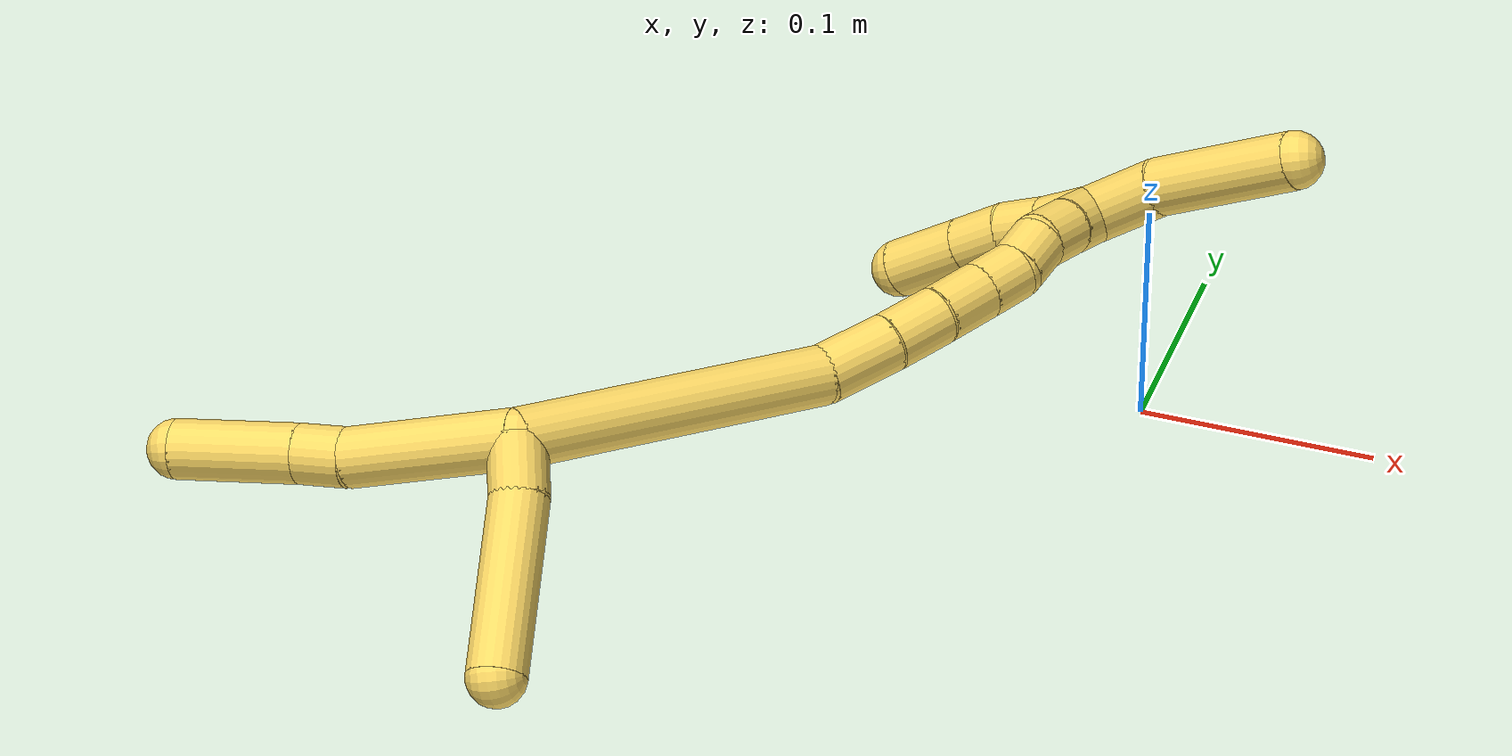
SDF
<sdf version="1.7">
 <world name="default">
  <model name="5">
   <static>0</static>
   <link name="5">
    <collision name="collision-cylinder-e_1_2_8">
     <pose>-0.000343 -0.004424 0.03717 0.118467 -0.009154 -0.000543</pose>
     <geometry><cylinder><radius>0.0125</radius><length>0.074868</length></cylinder></geometry>
     <surface>
      <friction><ode><mu>1.16</mu><mu2>1.16</mu2><slip1>0</slip1><slip2>0</slip2></ode></friction>
      <contact><ode><kp>1e+06</kp><kd>1</kd><max_vel>0</max_vel><min_depth>0.001</min_depth></ode></contact>
     </surface>
    </collision>
    <visual name="visual-cylinder-e_1_2_8">
     <pose>-0.000343 -0.004424 0.03717 0.118467 -0.009154 -0.000543</pose>
     <geometry><cylinder><radius>0.0125</radius><length>0.074868</length></cylinder></geometry>
     <material><ambient>1 0.858824 0.4 1</ambient></material>
    </visual>
    <collision name="collision-cylinder-e_2_8_9">
     <pose>-0.00259 -0.009621 0.084824 0.07355 -0.179249 -0.006612</pose>
     <geometry><cylinder><radius>0.0125</radius><length>0.021367</length></cylinder></geometry>
     <surface>
      <friction><ode><mu>1.16</mu><mu2>1.16</mu2><slip1>0</slip1><slip2>0</slip2></ode></friction>
      <contact><ode><kp>1e+06</kp><kd>1</kd><max_vel>0</max_vel><min_depth>0.001</min_depth></ode></contact>
     </surface>
    </collision>
    <visual name="visual-cylinder-e_2_8_9">
     <pose>-0.00259 -0.009621 0.084824 0.07355 -0.179249 -0.006612</pose>
     <geometry><cylinder><radius>0.0125</radius><length>0.021367</length></cylinder></geometry>
     <material><ambient>1 0.858824 0.4 1</ambient></material>
    </visual>
    <collision name="collision-cylinder-e_3_9_6">
     <pose>-0.007871 -0.010338 0.121977 -0.002075 -0.125942 0.000131</pose>
     <geometry><cylinder><radius>0.0125</radius><length>0.053765</length></cylinder></geometry>
     <surface>
      <friction><ode><mu>1.16</mu><mu2>1.16</mu2><slip1>0</slip1><slip2>0</slip2></ode></friction>
      <contact><ode><kp>1e+06</kp><kd>1</kd><max_vel>0</max_vel><min_depth>0.001</min_depth></ode></contact>
     </surface>
    </collision>
    <visual name="visual-cylinder-e_3_9_6">
     <pose>-0.007871 -0.010338 0.121977 -0.002075 -0.125942 0.000131</pose>
     <geometry><cylinder><radius>0.0125</radius><length>0.053765</length></cylinder></geometry>
     <material><ambient>1 0.858824 0.4 1</ambient></material>
    </visual>
    <collision name="collision-cylinder-e_1_2_10">
     <pose>0.012225 0.001066 -0.000528 -2.03078 1.47381 -1.94195</pose>
     <geometry><cylinder><radius>0.0125</radius><length>0.024566</length></cylinder></geometry>
     <surface>
      <friction><ode><mu>1.16</mu><mu2>1.16</mu2><slip1>0</slip1><slip2>0</slip2></ode></friction>
      <contact><ode><kp>1e+06</kp><kd>1</kd><max_vel>0</max_vel><min_depth>0.001</min_depth></ode></contact>
     </surface>
    </collision>
    <visual name="visual-cylinder-e_1_2_10">
     <pose>0.012225 0.001066 -0.000528 -2.03078 1.47381 -1.94195</pose>
     <geometry><cylinder><radius>0.0125</radius><length>0.024566</length></cylinder></geometry>
     <material><ambient>1 0.858824 0.4 1</ambient></material>
    </visual>
    <collision name="collision-cylinder-e_2_10_5">
     <pose>0.06131 0.009528 0.001984 -1.18082 1.35714 -0.990794</pose>
     <geometry><cylinder><radius>0.0125</radius><length>0.075434</length></cylinder></geometry>
     <surface>
      <friction><ode><mu>1.16</mu><mu2>1.16</mu2><slip1>0</slip1><slip2>0</slip2></ode></friction>
      <contact><ode><kp>1e+06</kp><kd>1</kd><max_vel>0</max_vel><min_depth>0.001</min_depth></ode></contact>
     </surface>
    </collision>
    <visual name="visual-cylinder-e_2_10_5">
     <pose>0.06131 0.009528 0.001984 -1.18082 1.35714 -0.990794</pose>
     <geometry><cylinder><radius>0.0125</radius><length>0.075434</length></cylinder></geometry>
     <material><ambient>1 0.858824 0.4 1</ambient></material>
    </visual>
    <collision name="collision-cylinder-e_1_2_11">
     <pose>-0.016955 -0.041991 -0.051858 2.46095 -0.248834 -0.679024</pose>
     <geometry><cylinder><radius>0.0125</radius><length>0.137696</length></cylinder></geometry>
     <surface>
      <friction><ode><mu>1.16</mu><mu2>1.16</mu2><slip1>0</slip1><slip2>0</slip2></ode></friction>
      <contact><ode><kp>1e+06</kp><kd>1</kd><max_vel>0</max_vel><min_depth>0.001</min_depth></ode></contact>
     </surface>
    </collision>
    <visual name="visual-cylinder-e_1_2_11">
     <pose>-0.016955 -0.041991 -0.051858 2.46095 -0.248834 -0.679024</pose>
     <geometry><cylinder><radius>0.0125</radius><length>0.137696</length></cylinder></geometry>
     <material><ambient>1 0.858824 0.4 1</ambient></material>
    </visual>
    <collision name="collision-cylinder-e_2_11_12">
     <pose>-0.041248 -0.091931 -0.11562 2.55281 -0.473669 -1.34465</pose>
     <geometry><cylinder><radius>0.0125</radius><length>0.032167</length></cylinder></geometry>
     <surface>
      <friction><ode><mu>1.16</mu><mu2>1.16</mu2><slip1>0</slip1><slip2>0</slip2></ode></friction>
      <contact><ode><kp>1e+06</kp><kd>1</kd><max_vel>0</max_vel><min_depth>0.001</min_depth></ode></contact>
     </surface>
    </collision>
    <visual name="visual-cylinder-e_2_11_12">
     <pose>-0.041248 -0.091931 -0.11562 2.55281 -0.473669 -1.34465</pose>
     <geometry><cylinder><radius>0.0125</radius><length>0.032167</length></cylinder></geometry>
     <material><ambient>1 0.858824 0.4 1</ambient></material>
    </visual>
    <collision name="collision-cylinder-e_3_12_13">
     <pose>-0.054939 -0.106838 -0.13631 2.47183 -0.515748 -1.2971</pose>
     <geometry><cylinder><radius>0.0125</radius><length>0.02577</length></cylinder></geometry>
     <surface>
      <friction><ode><mu>1.16</mu><mu2>1.16</mu2><slip1>0</slip1><slip2>0</slip2></ode></friction>
      <contact><ode><kp>1e+06</kp><kd>1</kd><max_vel>0</max_vel><min_depth>0.001</min_depth></ode></contact>
     </surface>
    </collision>
    <visual name="visual-cylinder-e_3_12_13">
     <pose>-0.054939 -0.106838 -0.13631 2.47183 -0.515748 -1.2971</pose>
     <geometry><cylinder><radius>0.0125</radius><length>0.02577</length></cylinder></geometry>
     <material><ambient>1 0.858824 0.4 1</ambient></material>
    </visual>
    <collision name="collision-cylinder-e_4_13_14">
     <pose>-0.067353 -0.121056 -0.152479 2.36447 -0.529541 -1.16997</pose>
     <geometry><cylinder><radius>0.0125</radius><length>0.023991</length></cylinder></geometry>
     <surface>
      <friction><ode><mu>1.16</mu><mu2>1.16</mu2><slip1>0</slip1><slip2>0</slip2></ode></friction>
      <contact><ode><kp>1e+06</kp><kd>1</kd><max_vel>0</max_vel><min_depth>0.001</min_depth></ode></contact>
     </surface>
    </collision>
    <visual name="visual-cylinder-e_4_13_14">
     <pose>-0.067353 -0.121056 -0.152479 2.36447 -0.529541 -1.16997</pose>
     <geometry><cylinder><radius>0.0125</radius><length>0.023991</length></cylinder></geometry>
     <material><ambient>1 0.858824 0.4 1</ambient></material>
    </visual>
    <collision name="collision-cylinder-e_5_14_15">
     <pose>-0.078557 -0.134146 -0.166171 2.39589 -0.539428 -1.23051</pose>
     <geometry><cylinder><radius>0.0125</radius><length>0.020028</length></cylinder></geometry>
     <surface>
      <friction><ode><mu>1.16</mu><mu2>1.16</mu2><slip1>0</slip1><slip2>0</slip2></ode></friction>
      <contact><ode><kp>1e+06</kp><kd>1</kd><max_vel>0</max_vel><min_depth>0.001</min_depth></ode></contact>
     </surface>
    </collision>
    <visual name="visual-cylinder-e_5_14_15">
     <pose>-0.078557 -0.134146 -0.166171 2.39589 -0.539428 -1.23051</pose>
     <geometry><cylinder><radius>0.0125</radius><length>0.020028</length></cylinder></geometry>
     <material><ambient>1 0.858824 0.4 1</ambient></material>
    </visual>
    <collision name="collision-cylinder-e_6_15_16">
     <pose>-0.09079 -0.145984 -0.176248 2.13044 -0.785368 -1.28474</pose>
     <geometry><cylinder><radius>0.0125</radius><length>0.020055</length></cylinder></geometry>
     <surface>
      <friction><ode><mu>1.16</mu><mu2>1.16</mu2><slip1>0</slip1><slip2>0</slip2></ode></friction>
      <contact><ode><kp>1e+06</kp><kd>1</kd><max_vel>0</max_vel><min_depth>0.001</min_depth></ode></contact>
     </surface>
    </collision>
    <visual name="visual-cylinder-e_6_15_16">
     <pose>-0.09079 -0.145984 -0.176248 2.13044 -0.785368 -1.28474</pose>
     <geometry><cylinder><radius>0.0125</radius><length>0.020055</length></cylinder></geometry>
     <material><ambient>1 0.858824 0.4 1</ambient></material>
    </visual>
    <collision name="collision-cylinder-e_7_16_17">
     <pose>-0.102568 -0.15981 -0.184433 2.08555 -0.48102 -0.796092</pose>
     <geometry><cylinder><radius>0.0125</radius><length>0.020261</length></cylinder></geometry>
     <surface>
      <friction><ode><mu>1.16</mu><mu2>1.16</mu2><slip1>0</slip1><slip2>0</slip2></ode></friction>
      <contact><ode><kp>1e+06</kp><kd>1</kd><max_vel>0</max_vel><min_depth>0.001</min_depth></ode></contact>
     </surface>
    </collision>
    <visual name="visual-cylinder-e_7_16_17">
     <pose>-0.102568 -0.15981 -0.184433 2.08555 -0.48102 -0.796092</pose>
     <geometry><cylinder><radius>0.0125</radius><length>0.020261</length></cylinder></geometry>
     <material><ambient>1 0.858824 0.4 1</ambient></material>
    </visual>
    <collision name="collision-cylinder-e_8_17_1">
     <pose>-0.111507 -0.175776 -0.192834 2.02501 -0.438435 -0.685298</pose>
     <geometry><cylinder><radius>0.0125</radius><length>0.020031</length></cylinder></geometry>
     <surface>
      <friction><ode><mu>1.16</mu><mu2>1.16</mu2><slip1>0</slip1><slip2>0</slip2></ode></friction>
      <contact><ode><kp>1e+06</kp><kd>1</kd><max_vel>0</max_vel><min_depth>0.001</min_depth></ode></contact>
     </surface>
    </collision>
    <visual name="visual-cylinder-e_8_17_1">
     <pose>-0.111507 -0.175776 -0.192834 2.02501 -0.438435 -0.685298</pose>
     <geometry><cylinder><radius>0.0125</radius><length>0.020031</length></cylinder></geometry>
     <material><ambient>1 0.858824 0.4 1</ambient></material>
    </visual>
    <collision name="collision-cylinder-e_1_1_18">
     <pose>-0.115444 -0.187865 -0.18612 0.353024 0.027609 0.004925</pose>
     <geometry><cylinder><radius>0.0125</radius><length>0.022798</length></cylinder></geometry>
     <surface>
      <friction><ode><mu>1.16</mu><mu2>1.16</mu2><slip1>0</slip1><slip2>0</slip2></ode></friction>
      <contact><ode><kp>1e+06</kp><kd>1</kd><max_vel>0</max_vel><min_depth>0.001</min_depth></ode></contact>
     </surface>
    </collision>
    <visual name="visual-cylinder-e_1_1_18">
     <pose>-0.115444 -0.187865 -0.18612 0.353024 0.027609 0.004925</pose>
     <geometry><cylinder><radius>0.0125</radius><length>0.022798</length></cylinder></geometry>
     <material><ambient>1 0.858824 0.4 1</ambient></material>
    </visual>
    <collision name="collision-cylinder-e_2_18_19">
     <pose>-0.115666 -0.195219 -0.165789 0.340419 -0.052473 -0.009021</pose>
     <geometry><cylinder><radius>0.0125</radius><length>0.020481</length></cylinder></geometry>
     <surface>
      <friction><ode><mu>1.16</mu><mu2>1.16</mu2><slip1>0</slip1><slip2>0</slip2></ode></friction>
      <contact><ode><kp>1e+06</kp><kd>1</kd><max_vel>0</max_vel><min_depth>0.001</min_depth></ode></contact>
     </surface>
    </collision>
    <visual name="visual-cylinder-e_2_18_19">
     <pose>-0.115666 -0.195219 -0.165789 0.340419 -0.052473 -0.009021</pose>
     <geometry><cylinder><radius>0.0125</radius><length>0.020481</length></cylinder></geometry>
     <material><ambient>1 0.858824 0.4 1</ambient></material>
    </visual>
    <collision name="collision-cylinder-e_3_19_20">
     <pose>-0.114896 -0.202568 -0.145676 0.359398 0.116322 0.021154</pose>
     <geometry><cylinder><radius>0.0125</radius><length>0.022529</length></cylinder></geometry>
     <surface>
      <friction><ode><mu>1.16</mu><mu2>1.16</mu2><slip1>0</slip1><slip2>0</slip2></ode></friction>
      <contact><ode><kp>1e+06</kp><kd>1</kd><max_vel>0</max_vel><min_depth>0.001</min_depth></ode></contact>
     </surface>
    </collision>
    <visual name="visual-cylinder-e_3_19_20">
     <pose>-0.114896 -0.202568 -0.145676 0.359398 0.116322 0.021154</pose>
     <geometry><cylinder><radius>0.0125</radius><length>0.022529</length></cylinder></geometry>
     <material><ambient>1 0.858824 0.4 1</ambient></material>
    </visual>
    <collision name="collision-cylinder-e_4_20_4">
     <pose>-0.111637 -0.212447 -0.119292 0.357518 0.114437 0.020699</pose>
     <geometry><cylinder><radius>0.0125</radius><length>0.034192</length></cylinder></geometry>
     <surface>
      <friction><ode><mu>1.16</mu><mu2>1.16</mu2><slip1>0</slip1><slip2>0</slip2></ode></friction>
      <contact><ode><kp>1e+06</kp><kd>1</kd><max_vel>0</max_vel><min_depth>0.001</min_depth></ode></contact>
     </surface>
    </collision>
    <visual name="visual-cylinder-e_4_20_4">
     <pose>-0.111637 -0.212447 -0.119292 0.357518 0.114437 0.020699</pose>
     <geometry><cylinder><radius>0.0125</radius><length>0.034192</length></cylinder></geometry>
     <material><ambient>1 0.858824 0.4 1</ambient></material>
    </visual>
    <collision name="collision-cylinder-e_1_1_21">
     <pose>-0.118735 -0.178067 -0.212636 -2.78704 -0.174584 0.908785</pose>
     <geometry><cylinder><radius>0.0125</radius><length>0.034267</length></cylinder></geometry>
     <surface>
      <friction><ode><mu>1.16</mu><mu2>1.16</mu2><slip1>0</slip1><slip2>0</slip2></ode></friction>
      <contact><ode><kp>1e+06</kp><kd>1</kd><max_vel>0</max_vel><min_depth>0.001</min_depth></ode></contact>
     </surface>
    </collision>
    <visual name="visual-cylinder-e_1_1_21">
     <pose>-0.118735 -0.178067 -0.212636 -2.78704 -0.174584 0.908785</pose>
     <geometry><cylinder><radius>0.0125</radius><length>0.034267</length></cylinder></geometry>
     <material><ambient>1 0.858824 0.4 1</ambient></material>
    </visual>
    <collision name="collision-cylinder-e_2_21_3">
     <pose>-0.121494 -0.161378 -0.259489 -2.80575 0.006601 -0.038935</pose>
     <geometry><cylinder><radius>0.0125</radius><length>0.065733</length></cylinder></geometry>
     <surface>
      <friction><ode><mu>1.16</mu><mu2>1.16</mu2><slip1>0</slip1><slip2>0</slip2></ode></friction>
      <contact><ode><kp>1e+06</kp><kd>1</kd><max_vel>0</max_vel><min_depth>0.001</min_depth></ode></contact>
     </surface>
    </collision>
    <visual name="visual-cylinder-e_2_21_3">
     <pose>-0.121494 -0.161378 -0.259489 -2.80575 0.006601 -0.038935</pose>
     <geometry><cylinder><radius>0.0125</radius><length>0.065733</length></cylinder></geometry>
     <material><ambient>1 0.858824 0.4 1</ambient></material>
    </visual>
    <collision name="collision-sphere-3">
     <pose>-0.121277 -0.150547 -0.290519 0 -0 0</pose>
     <geometry><sphere><radius>0.0125</radius></sphere></geometry>
     <surface>
      <friction><ode><mu>1.16</mu><mu2>1.16</mu2><slip1>0</slip1><slip2>0</slip2></ode></friction>
      <contact><ode><kp>1e+06</kp><kd>1</kd><max_vel>0</max_vel><min_depth>0.001</min_depth></ode></contact>
     </surface>
    </collision>
    <visual name="visual-sphere-3">
     <pose>-0.121277 -0.150547 -0.290519 0 -0 0</pose>
     <geometry><sphere><radius>0.0125</radius></sphere></geometry>
     <material><ambient>1 0.858824 0.4 1</ambient></material>
    </visual>
    <collision name="collision-sphere-21">
     <pose>-0.121711 -0.172209 -0.228459 0 -0 0</pose>
     <geometry><sphere><radius>0.0125</radius></sphere></geometry>
     <surface>
      <friction><ode><mu>1.16</mu><mu2>1.16</mu2><slip1>0</slip1><slip2>0</slip2></ode></friction>
      <contact><ode><kp>1e+06</kp><kd>1</kd><max_vel>0</max_vel><min_depth>0.001</min_depth></ode></contact>
     </surface>
    </collision>
    <visual name="visual-sphere-21">
     <pose>-0.121711 -0.172209 -0.228459 0 -0 0</pose>
     <geometry><sphere><radius>0.0125</radius></sphere></geometry>
     <material><ambient>1 0.858824 0.4 1</ambient></material>
    </visual>
    <collision name="collision-sphere-4">
     <pose>-0.109685 -0.21839 -0.103382 0 -0 0</pose>
     <geometry><sphere><radius>0.0125</radius></sphere></geometry>
     <surface>
      <friction><ode><mu>1.16</mu><mu2>1.16</mu2><slip1>0</slip1><slip2>0</slip2></ode></friction>
      <contact><ode><kp>1e+06</kp><kd>1</kd><max_vel>0</max_vel><min_depth>0.001</min_depth></ode></contact>
     </surface>
    </collision>
    <visual name="visual-sphere-4">
     <pose>-0.109685 -0.21839 -0.103382 0 -0 0</pose>
     <geometry><sphere><radius>0.0125</radius></sphere></geometry>
     <material><ambient>1 0.858824 0.4 1</ambient></material>
    </visual>
    <collision name="collision-sphere-20">
     <pose>-0.113589 -0.206503 -0.135202 0 -0 0</pose>
     <geometry><sphere><radius>0.0125</radius></sphere></geometry>
     <surface>
      <friction><ode><mu>1.16</mu><mu2>1.16</mu2><slip1>0</slip1><slip2>0</slip2></ode></friction>
      <contact><ode><kp>1e+06</kp><kd>1</kd><max_vel>0</max_vel><min_depth>0.001</min_depth></ode></contact>
     </surface>
    </collision>
    <visual name="visual-sphere-20">
     <pose>-0.113589 -0.206503 -0.135202 0 -0 0</pose>
     <geometry><sphere><radius>0.0125</radius></sphere></geometry>
     <material><ambient>1 0.858824 0.4 1</ambient></material>
    </visual>
    <collision name="collision-sphere-5">
     <pose>0.098169 0.016925 0.005025 0 -0 0</pose>
     <geometry><sphere><radius>0.0125</radius></sphere></geometry>
     <surface>
      <friction><ode><mu>1.16</mu><mu2>1.16</mu2><slip1>0</slip1><slip2>0</slip2></ode></friction>
      <contact><ode><kp>1e+06</kp><kd>1</kd><max_vel>0</max_vel><min_depth>0.001</min_depth></ode></contact>
     </surface>
    </collision>
    <visual name="visual-sphere-5">
     <pose>0.098169 0.016925 0.005025 0 -0 0</pose>
     <geometry><sphere><radius>0.0125</radius></sphere></geometry>
     <material><ambient>1 0.858824 0.4 1</ambient></material>
    </visual>
    <collision name="collision-sphere-10">
     <pose>0.02445 0.002132 -0.001056 0 -0 0</pose>
     <geometry><sphere><radius>0.0125</radius></sphere></geometry>
     <surface>
      <friction><ode><mu>1.16</mu><mu2>1.16</mu2><slip1>0</slip1><slip2>0</slip2></ode></friction>
      <contact><ode><kp>1e+06</kp><kd>1</kd><max_vel>0</max_vel><min_depth>0.001</min_depth></ode></contact>
     </surface>
    </collision>
    <visual name="visual-sphere-10">
     <pose>0.02445 0.002132 -0.001056 0 -0 0</pose>
     <geometry><sphere><radius>0.0125</radius></sphere></geometry>
     <material><ambient>1 0.858824 0.4 1</ambient></material>
    </visual>
    <collision name="collision-sphere-6">
     <pose>-0.011248 -0.010283 0.148647 0 -0 0</pose>
     <geometry><sphere><radius>0.0125</radius></sphere></geometry>
     <surface>
      <friction><ode><mu>1.16</mu><mu2>1.16</mu2><slip1>0</slip1><slip2>0</slip2></ode></friction>
      <contact><ode><kp>1e+06</kp><kd>1</kd><max_vel>0</max_vel><min_depth>0.001</min_depth></ode></contact>
     </surface>
    </collision>
    <visual name="visual-sphere-6">
     <pose>-0.011248 -0.010283 0.148647 0 -0 0</pose>
     <geometry><sphere><radius>0.0125</radius></sphere></geometry>
     <material><ambient>1 0.858824 0.4 1</ambient></material>
    </visual>
    <collision name="collision-sphere-9">
     <pose>-0.004495 -0.010393 0.095308 0 -0 0</pose>
     <geometry><sphere><radius>0.0125</radius></sphere></geometry>
     <surface>
      <friction><ode><mu>1.16</mu><mu2>1.16</mu2><slip1>0</slip1><slip2>0</slip2></ode></friction>
      <contact><ode><kp>1e+06</kp><kd>1</kd><max_vel>0</max_vel><min_depth>0.001</min_depth></ode></contact>
     </surface>
    </collision>
    <visual name="visual-sphere-9">
     <pose>-0.004495 -0.010393 0.095308 0 -0 0</pose>
     <geometry><sphere><radius>0.0125</radius></sphere></geometry>
     <material><ambient>1 0.858824 0.4 1</ambient></material>
    </visual>
    <collision name="collision-sphere-2">
     <geometry><sphere><radius>0.0125</radius></sphere></geometry>
     <surface>
      <friction><ode><mu>1.16</mu><mu2>1.16</mu2><slip1>0</slip1><slip2>0</slip2></ode></friction>
      <contact><ode><kp>1e+06</kp><kd>1</kd><max_vel>0</max_vel><min_depth>0.001</min_depth></ode></contact>
     </surface>
    </collision>
    <visual name="visual-sphere-2">
     <geometry><sphere><radius>0.0125</radius></sphere></geometry>
     <material><ambient>1 0.858824 0.4 1</ambient></material>
    </visual>
    <collision name="collision-sphere-19">
     <pose>-0.116204 -0.198633 -0.156149 0 -0 0</pose>
     <geometry><sphere><radius>0.0125</radius></sphere></geometry>
     <surface>
      <friction><ode><mu>1.16</mu><mu2>1.16</mu2><slip1>0</slip1><slip2>0</slip2></ode></friction>
      <contact><ode><kp>1e+06</kp><kd>1</kd><max_vel>0</max_vel><min_depth>0.001</min_depth></ode></contact>
     </surface>
    </collision>
    <visual name="visual-sphere-19">
     <pose>-0.116204 -0.198633 -0.156149 0 -0 0</pose>
     <geometry><sphere><radius>0.0125</radius></sphere></geometry>
     <material><ambient>1 0.858824 0.4 1</ambient></material>
    </visual>
    <collision name="collision-sphere-8">
     <pose>-0.000685 -0.008848 0.07434 0 -0 0</pose>
     <geometry><sphere><radius>0.0125</radius></sphere></geometry>
     <surface>
      <friction><ode><mu>1.16</mu><mu2>1.16</mu2><slip1>0</slip1><slip2>0</slip2></ode></friction>
      <contact><ode><kp>1e+06</kp><kd>1</kd><max_vel>0</max_vel><min_depth>0.001</min_depth></ode></contact>
     </surface>
    </collision>
    <visual name="visual-sphere-8">
     <pose>-0.000685 -0.008848 0.07434 0 -0 0</pose>
     <geometry><sphere><radius>0.0125</radius></sphere></geometry>
     <material><ambient>1 0.858824 0.4 1</ambient></material>
    </visual>
    <collision name="collision-sphere-11">
     <pose>-0.033911 -0.083982 -0.103717 0 -0 0</pose>
     <geometry><sphere><radius>0.0125</radius></sphere></geometry>
     <surface>
      <friction><ode><mu>1.16</mu><mu2>1.16</mu2><slip1>0</slip1><slip2>0</slip2></ode></friction>
      <contact><ode><kp>1e+06</kp><kd>1</kd><max_vel>0</max_vel><min_depth>0.001</min_depth></ode></contact>
     </surface>
    </collision>
    <visual name="visual-sphere-11">
     <pose>-0.033911 -0.083982 -0.103717 0 -0 0</pose>
     <geometry><sphere><radius>0.0125</radius></sphere></geometry>
     <material><ambient>1 0.858824 0.4 1</ambient></material>
    </visual>
    <collision name="collision-sphere-12">
     <pose>-0.048584 -0.099879 -0.127523 0 -0 0</pose>
     <geometry><sphere><radius>0.0125</radius></sphere></geometry>
     <surface>
      <friction><ode><mu>1.16</mu><mu2>1.16</mu2><slip1>0</slip1><slip2>0</slip2></ode></friction>
      <contact><ode><kp>1e+06</kp><kd>1</kd><max_vel>0</max_vel><min_depth>0.001</min_depth></ode></contact>
     </surface>
    </collision>
    <visual name="visual-sphere-12">
     <pose>-0.048584 -0.099879 -0.127523 0 -0 0</pose>
     <geometry><sphere><radius>0.0125</radius></sphere></geometry>
     <material><ambient>1 0.858824 0.4 1</ambient></material>
    </visual>
    <collision name="collision-sphere-13">
     <pose>-0.061294 -0.113797 -0.145098 0 -0 0</pose>
     <geometry><sphere><radius>0.0125</radius></sphere></geometry>
     <surface>
      <friction><ode><mu>1.16</mu><mu2>1.16</mu2><slip1>0</slip1><slip2>0</slip2></ode></friction>
      <contact><ode><kp>1e+06</kp><kd>1</kd><max_vel>0</max_vel><min_depth>0.001</min_depth></ode></contact>
     </surface>
    </collision>
    <visual name="visual-sphere-13">
     <pose>-0.061294 -0.113797 -0.145098 0 -0 0</pose>
     <geometry><sphere><radius>0.0125</radius></sphere></geometry>
     <material><ambient>1 0.858824 0.4 1</ambient></material>
    </visual>
    <collision name="collision-sphere-14">
     <pose>-0.073413 -0.128316 -0.159859 0 -0 0</pose>
     <geometry><sphere><radius>0.0125</radius></sphere></geometry>
     <surface>
      <friction><ode><mu>1.16</mu><mu2>1.16</mu2><slip1>0</slip1><slip2>0</slip2></ode></friction>
      <contact><ode><kp>1e+06</kp><kd>1</kd><max_vel>0</max_vel><min_depth>0.001</min_depth></ode></contact>
     </surface>
    </collision>
    <visual name="visual-sphere-14">
     <pose>-0.073413 -0.128316 -0.159859 0 -0 0</pose>
     <geometry><sphere><radius>0.0125</radius></sphere></geometry>
     <material><ambient>1 0.858824 0.4 1</ambient></material>
    </visual>
    <collision name="collision-sphere-15">
     <pose>-0.0837 -0.139975 -0.172483 0 -0 0</pose>
     <geometry><sphere><radius>0.0125</radius></sphere></geometry>
     <surface>
      <friction><ode><mu>1.16</mu><mu2>1.16</mu2><slip1>0</slip1><slip2>0</slip2></ode></friction>
      <contact><ode><kp>1e+06</kp><kd>1</kd><max_vel>0</max_vel><min_depth>0.001</min_depth></ode></contact>
     </surface>
    </collision>
    <visual name="visual-sphere-15">
     <pose>-0.0837 -0.139975 -0.172483 0 -0 0</pose>
     <geometry><sphere><radius>0.0125</radius></sphere></geometry>
     <material><ambient>1 0.858824 0.4 1</ambient></material>
    </visual>
    <collision name="collision-sphere-16">
     <pose>-0.097881 -0.151993 -0.180012 0 -0 0</pose>
     <geometry><sphere><radius>0.0125</radius></sphere></geometry>
     <surface>
      <friction><ode><mu>1.16</mu><mu2>1.16</mu2><slip1>0</slip1><slip2>0</slip2></ode></friction>
      <contact><ode><kp>1e+06</kp><kd>1</kd><max_vel>0</max_vel><min_depth>0.001</min_depth></ode></contact>
     </surface>
    </collision>
    <visual name="visual-sphere-16">
     <pose>-0.097881 -0.151993 -0.180012 0 -0 0</pose>
     <geometry><sphere><radius>0.0125</radius></sphere></geometry>
     <material><ambient>1 0.858824 0.4 1</ambient></material>
    </visual>
    <collision name="collision-sphere-17">
     <pose>-0.107255 -0.167627 -0.188855 0 -0 0</pose>
     <geometry><sphere><radius>0.0125</radius></sphere></geometry>
     <surface>
      <friction><ode><mu>1.16</mu><mu2>1.16</mu2><slip1>0</slip1><slip2>0</slip2></ode></friction>
      <contact><ode><kp>1e+06</kp><kd>1</kd><max_vel>0</max_vel><min_depth>0.001</min_depth></ode></contact>
     </surface>
    </collision>
    <visual name="visual-sphere-17">
     <pose>-0.107255 -0.167627 -0.188855 0 -0 0</pose>
     <geometry><sphere><radius>0.0125</radius></sphere></geometry>
     <material><ambient>1 0.858824 0.4 1</ambient></material>
    </visual>
    <collision name="collision-sphere-1">
     <pose>-0.115759 -0.183925 -0.196812 0 -0 0</pose>
     <geometry><sphere><radius>0.0125</radius></sphere></geometry>
     <surface>
      <friction><ode><mu>1.16</mu><mu2>1.16</mu2><slip1>0</slip1><slip2>0</slip2></ode></friction>
      <contact><ode><kp>1e+06</kp><kd>1</kd><max_vel>0</max_vel><min_depth>0.001</min_depth></ode></contact>
     </surface>
    </collision>
    <visual name="visual-sphere-1">
     <pose>-0.115759 -0.183925 -0.196812 0 -0 0</pose>
     <geometry><sphere><radius>0.0125</radius></sphere></geometry>
     <material><ambient>1 0.858824 0.4 1</ambient></material>
    </visual>
    <collision name="collision-sphere-18">
     <pose>-0.115129 -0.191804 -0.175428 0 -0 0</pose>
     <geometry><sphere><radius>0.0125</radius></sphere></geometry>
     <surface>
      <friction><ode><mu>1.16</mu><mu2>1.16</mu2><slip1>0</slip1><slip2>0</slip2></ode></friction>
      <contact><ode><kp>1e+06</kp><kd>1</kd><max_vel>0</max_vel><min_depth>0.001</min_depth></ode></contact>
     </surface>
    </collision>
    <visual name="visual-sphere-18">
     <pose>-0.115129 -0.191804 -0.175428 0 -0 0</pose>
     <geometry><sphere><radius>0.0125</radius></sphere></geometry>
     <material><ambient>1 0.858824 0.4 1</ambient></material>
    </visual>
    <inertial>
     <pose>-0.044586 -0.085248 -0.080728 0 -0 0</pose>
     <mass>0.75</mass>
     <inertia>
      <ixx>0.000117</ixx>
      <ixy>0</ixy>
      <ixz>0</ixz>
      <iyy>-0.000201</iyy>
      <iyz>0</iyz>
      <izz>0.000156</izz>
     </inertia>
    </inertial>
   </link>
   <pose>-0.203434 -0.194838 0.071448 1.87862 0.726585 -1.19331</pose>
  </model>
 </world>
</sdf>
